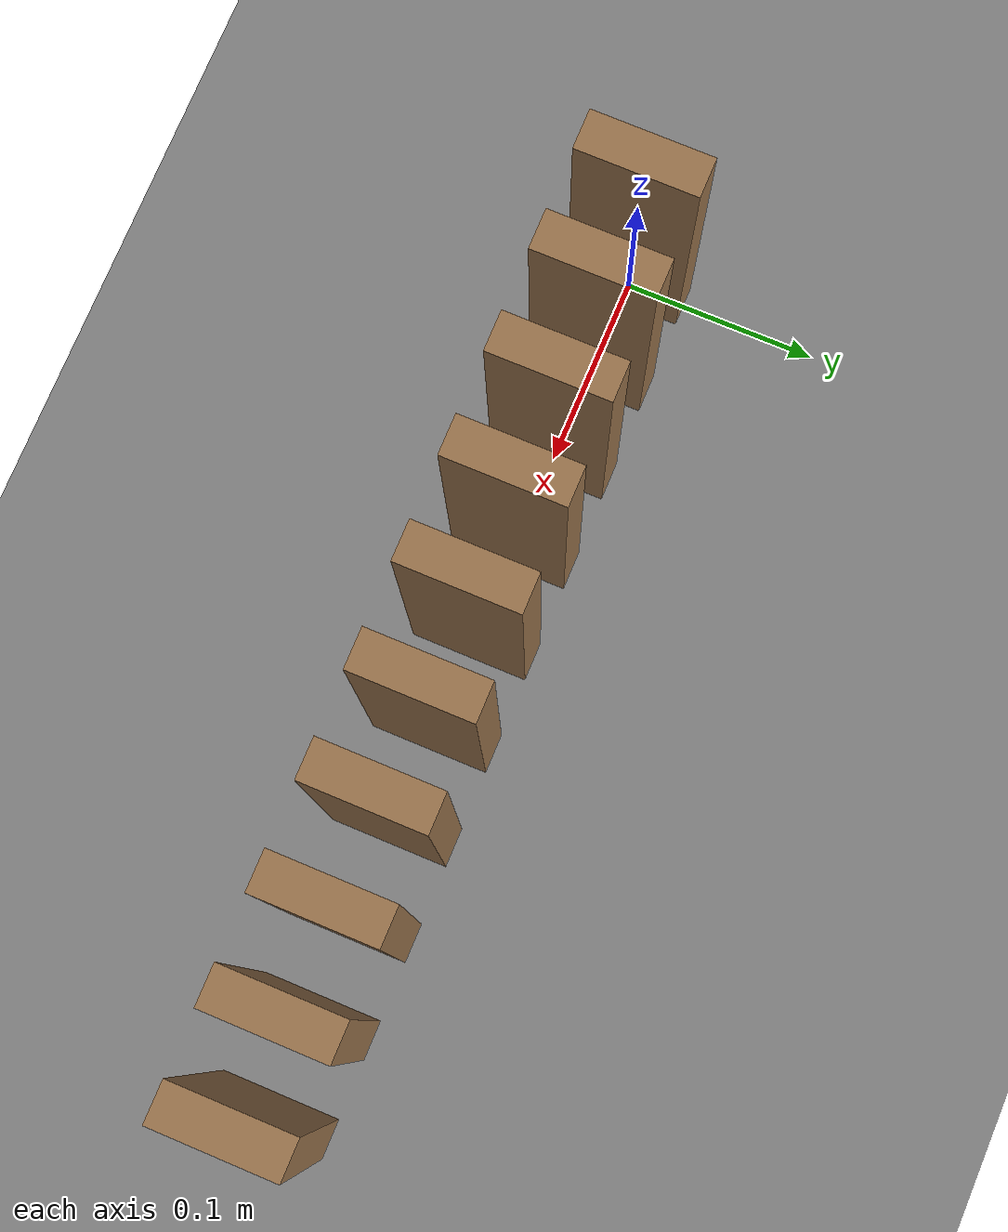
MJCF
<mujoco model="ten_falling_dominoes">
  <compiler angle="radian"/>
  <option timestep="0.002"/>
  <worldbody>
    <geom name="floor" type="plane" size="3 3 0.1" friction="0.9 0.005 0.002"/>
    <body name="domino1" pos="0 0 0.08">
      <freejoint/>
      <geom name="domino1" type="box" pos="0 0 0" size="0.01 0.03 0.08" mass="0.12" friction="0.9 0.005 0.002" solref="0.01 1" rgba="0.6 0.45 0.3 1"/>
    </body>
    <body name="domino2" pos="0.05 0 0.08">
      <freejoint/>
      <geom name="domino2" type="box" pos="0 0 0" size="0.01 0.03 0.08" mass="0.12" friction="0.9 0.005 0.002" solref="0.01 1" rgba="0.6 0.45 0.3 1"/>
    </body>
    <body name="domino3" pos="0.1 0 0.08">
      <freejoint/>
      <geom name="domino3" type="box" pos="0 0 0" size="0.01 0.03 0.08" mass="0.12" friction="0.9 0.005 0.002" solref="0.01 1" rgba="0.6 0.45 0.3 1"/>
    </body>
    <body name="domino4" pos="0.15 0 0.08">
      <freejoint/>
      <geom name="domino4" type="box" pos="0 0 0" size="0.01 0.03 0.08" mass="0.12" friction="0.9 0.005 0.002" solref="0.01 1" rgba="0.6 0.45 0.3 1"/>
    </body>
    <body name="domino5" pos="0.2 0 0.08">
      <freejoint/>
      <geom name="domino5" type="box" pos="0 0 0" size="0.01 0.03 0.08" mass="0.12" friction="0.9 0.005 0.002" solref="0.01 1" rgba="0.6 0.45 0.3 1"/>
    </body>
    <body name="domino6" pos="0.25 0 0.08">
      <freejoint/>
      <geom name="domino6" type="box" pos="0 0 0" size="0.01 0.03 0.08" mass="0.12" friction="0.9 0.005 0.002" solref="0.01 1" rgba="0.6 0.45 0.3 1"/>
    </body>
    <body name="domino7" pos="0.3 0 0.08">
      <freejoint/>
      <geom name="domino7" type="box" pos="0 0 0" size="0.01 0.03 0.08" mass="0.12" friction="0.9 0.005 0.002" solref="0.01 1" rgba="0.6 0.45 0.3 1"/>
    </body>
    <body name="domino8" pos="0.35 0 0.08">
      <freejoint/>
      <geom name="domino8" type="box" pos="0 0 0" size="0.01 0.03 0.08" mass="0.12" friction="0.9 0.005 0.002" solref="0.01 1" rgba="0.6 0.45 0.3 1"/>
    </body>
    <body name="domino9" pos="0.4 0 0.08">
      <freejoint/>
      <geom name="domino9" type="box" pos="0 0 0" size="0.01 0.03 0.08" mass="0.12" friction="0.9 0.005 0.002" solref="0.01 1" rgba="0.6 0.45 0.3 1"/>
    </body>
    <body name="domino10" pos="0.45 0 0.08">
      <freejoint/>
      <geom name="domino10" type="box" pos="0 0 0" size="0.01 0.03 0.08" mass="0.12" friction="0.9 0.005 0.002" solref="0.01 1" rgba="0.6 0.45 0.3 1"/>
    </body>
  </worldbody>
  <keyframe>
    <key name="start" qpos="0 0 0.08 1 0 0 0 0.05 0 0.08 1 0 0 0 0.1 0 0.08 1 0 0 0 0.15 0 0.08 1 0 0 0 0.2 0 0.08 1 0 0 0 0.25 0 0.08 1 0 0 0 0.3 0 0.08 1 0 0 0 0.35 0 0.08 1 0 0 0 0.4 0 0.08 1 0 0 0 0.45 0 0.08 1 0 0 0" qvel="0 0 0 0 8 0 0 0 0 0 0 0 0 0 0 0 0 0 0 0 0 0 0 0 0 0 0 0 0 0 0 0 0 0 0 0 0 0 0 0 0 0 0 0 0 0 0 0 0 0 0 0 0 0 0 0 0 0 0 0"/>
  </keyframe>
</mujoco>
